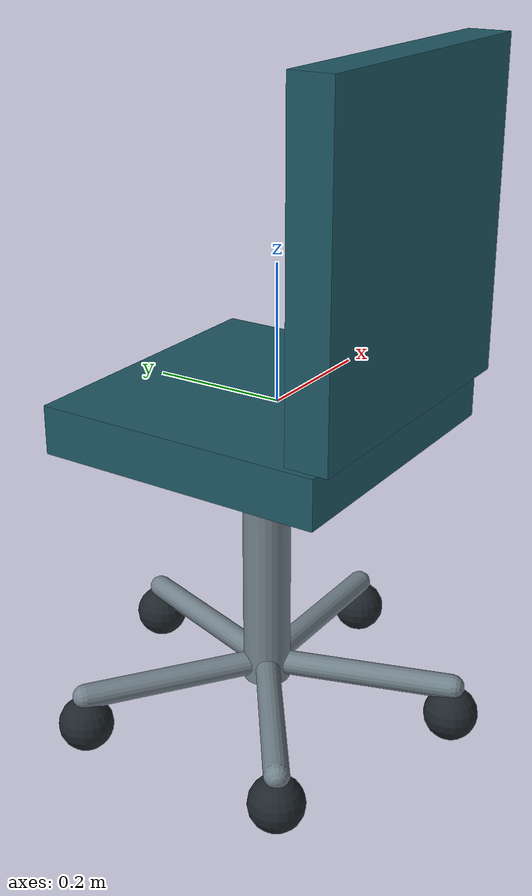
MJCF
<?xml version='1.0' encoding='utf-8'?>
<mujoco model="Lab task chair | static procedural reference">
  <visual>
    <global offwidth="1000" offheight="600" />
  </visual>
  <asset>
    <texture type="skybox" builtin="gradient" rgb1=".92 .95 .97" rgb2=".70 .78 .84" width="512" height="3072" />
  </asset>
  <worldbody>
    <geom type="box" size="0.22 0.21 0.035" pos="-0.0267376 0 -0.005" quat="1 0 0 0" rgba="0.119999997 0.340000004 0.389999986 1" contype="0" conaffinity="0" />
    <geom type="box" size="0.22 0.03 0.23" pos="-0.0267376 -0.2 0.265" quat="1 0 0 0" rgba="0.119999997 0.340000004 0.389999986 1" contype="0" conaffinity="0" />
    <geom type="cylinder" size="0.035 0.2" pos="-0.0267376 0 -0.235" quat="1 0 0 0" rgba="0.449999988 0.50999999 0.550000012 1" contype="0" conaffinity="0" />
    <geom type="capsule" size="0.018 0.14" pos="0.1132624 0 -0.41" quat="0.707106781 0 -0.707106781 0" rgba="0.449999988 0.50999999 0.550000012 1" contype="0" conaffinity="0" />
    <geom type="sphere" size="0.04" pos="0.2532624 0 -0.455" quat="1 0 0 0" rgba="0.119999997 0.150000006 0.170000002 1" contype="0" conaffinity="0" />
    <geom type="capsule" size="0.018 0.139999995" pos="0.0165248 0.1331479 -0.41" quat="0.707106781 0.672498475 -0.218508125 0" rgba="0.449999988 0.50999999 0.550000012 1" contype="0" conaffinity="0" />
    <geom type="sphere" size="0.04" pos="0.0597872 0.2662958 -0.455" quat="1 0 0 0" rgba="0.119999997 0.150000006 0.170000002 1" contype="0" conaffinity="0" />
    <geom type="capsule" size="0.018 0.140000025" pos="-0.14 0.08228995 -0.41" quat="0.707106781 0.415626936 0.572061404 0" rgba="0.449999988 0.50999999 0.550000012 1" contype="0" conaffinity="0" />
    <geom type="sphere" size="0.04" pos="-0.2532624 0.1645799 -0.455" quat="1 0 0 0" rgba="0.119999997 0.150000006 0.170000002 1" contype="0" conaffinity="0" />
    <geom type="capsule" size="0.018 0.140000025" pos="-0.14 -0.08228995 -0.41" quat="0.707106781 -0.415626936 0.572061404 0" rgba="0.449999988 0.50999999 0.550000012 1" contype="0" conaffinity="0" />
    <geom type="sphere" size="0.04" pos="-0.2532624 -0.1645799 -0.455" quat="1 0 0 0" rgba="0.119999997 0.150000006 0.170000002 1" contype="0" conaffinity="0" />
    <geom type="capsule" size="0.018 0.139999995" pos="0.0165248 -0.1331479 -0.41" quat="0.707106781 -0.672498475 -0.218508125 0" rgba="0.449999988 0.50999999 0.550000012 1" contype="0" conaffinity="0" />
    <geom type="sphere" size="0.04" pos="0.0597872 -0.2662958 -0.455" quat="1 0 0 0" rgba="0.119999997 0.150000006 0.170000002 1" contype="0" conaffinity="0" />
  </worldbody>
</mujoco>
